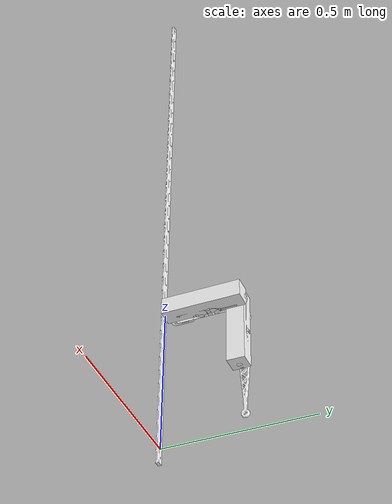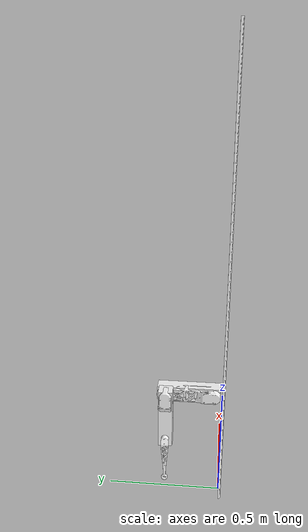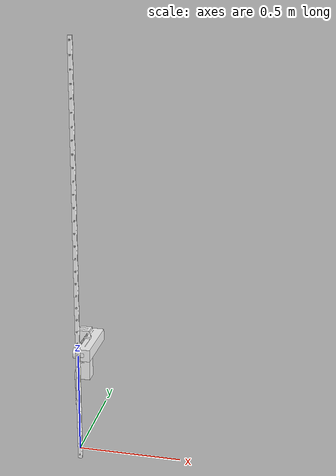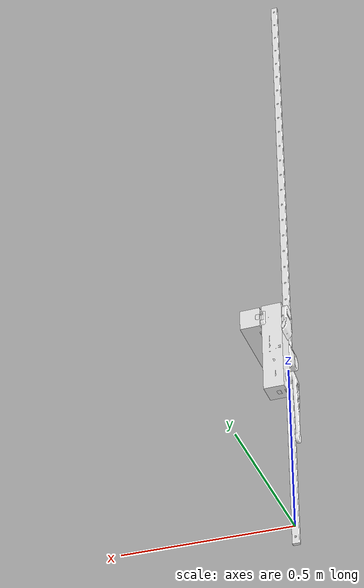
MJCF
<mujoco model="leg_constrained">
  <compiler angle="radian" meshdir="../meshes/"/>
  <asset>
    <mesh name="cart" file="cart.stl" scale="0.001 0.001 0.001"/>
    <mesh name="Module_left_hind" file="Module_left_hind.stl"/>
    <mesh name="Lower_leg_left" file="Lower_leg_left.stl"/>
  </asset>
  <worldbody>
    <body name="base_link">
      <inertial pos="0 0 0" mass="0.0001" diaginertia="1e-05 1e-05 1e-05"/>
      <geom quat="3.26795e-07 0 0 -1" type="mesh" contype="0" conaffinity="0" group="1" density="0" rgba="1 1 1 1" mesh="cart"/>
      <body name="LH_SHOULDER" pos="0.025 0.05 0.5" quat="2.31079e-07 -0.707107 0.707107 2.31079e-07">
        <inertial pos="-0.0724874 0.0315826 0.00248124" quat="0.546772 0.454856 0.541001 0.448848" mass="0.476697" diaginertia="0.00306152 0.00305004 0.000215348"/>
        <geom type="mesh" contype="0" conaffinity="0" group="1" density="0" rgba="1 1 1 1" mesh="Module_left_hind"/>
        <geom size="0.1345 0.0285 0.03" pos="-0.0945 0 0" type="box" rgba="1 1 1 1"/>
        <body name="LH_UPPER_LEG" pos="-0.19 0.044 0" quat="0.707107 0 0.707107 0">
          <inertial pos="-0.0724874 0.0315826 0.00248124" quat="0.546772 0.454856 0.541001 0.448848" mass="0.476697" diaginertia="0.00306152 0.00305004 0.000215348"/>
          <joint name="theta_hip" pos="0 0 0" axis="0 1 0" actuatorfrcrange="-6 6" range="-5. 5." armature="0.0" damping="0.05" frictionloss="0.001"/>
          <geom type="mesh" contype="0" conaffinity="0" group="1" density="0" rgba="1 1 1 1" mesh="Module_left_hind"/>
          <geom size="0.1345 0.0285 0.03" pos="-0.0945 0.015 0" type="box" rgba="1 1 1 1"/>
          <body name="LH_LINK_HIP" pos="0 0 0">
            <inertial pos="0 0 0" mass="0.001" diaginertia="1e-06 1e-06 1e-06"/>
            <joint name="q_hip" pos="0 0 0" axis="0 1 0" range="-3.14159 3.14159" armature="0.001" damping="0.05" stiffness="0.5" frictionloss="0.001"/>
            <body name="LH_LOWER_LEG" pos="-0.19 0.044 0">
              <inertial pos="-0.0660893 0.0198901 1.55259e-05" quat="0.487419 0.486067 0.513613 0.512215" mass="0.046942" diaginertia="0.000213 0.000211548 4.57013e-06"/>
              <joint name="theta_knee" pos="0 0 0" axis="0 1 0" actuatorfrcrange="-6 6" range="-5. 5." armature="0.0" damping="0.05" frictionloss="0.001"/>
              <geom quat="0.707107 0 0.707107 0" type="mesh" contype="0" conaffinity="0" group="1" density="0" rgba="1 1 1 1" mesh="Lower_leg_left"/>
              <geom name="LH_LOWER_LEG" quat="0.707107 0 0.707107 0" type="mesh" rgba="1 1 1 1" mesh="Lower_leg_left"/>
              <body name="LH_LINK_KNEE" pos="0 0 0">
                <inertial pos="0 0 0" mass="0.001" diaginertia="1e-06 1e-06 1e-06"/>
                <joint name="q_knee" pos="0 0 0" axis="0 1 0" range="-3.14159 3.14159" armature="0.001" damping="0.05" stiffness="0.5" frictionloss="0.001"/>
                <body name="LH_FOOT" pos="-0.19 0.028 0"/>
              </body>
            </body>
          </body>
        </body>
      </body>
    </body>
  </worldbody>
<actuator>
    <motor name="HIP" joint="theta_hip" ctrlrange="-5 5" gear="0.2"/>
    <motor name="KNEE" joint="theta_knee" ctrlrange="-5 5" gear="0.02"/>
  </actuator>

  <sensor>
    <jointpos name="theta_hip" joint="theta_hip"/>
    <jointpos name="theta_knee" joint="theta_knee"/>
    <jointvel name="dtheta_hip" joint="theta_hip"/>
    <jointvel name="dtheta_knee" joint="theta_knee"/>
    <jointpos name="q_hip" joint="q_hip"/>
    <jointpos name="q_knee" joint="q_knee"/>
    <jointvel name="dq_hip" joint="q_hip"/>
    <jointvel name="dq_knee" joint="q_knee"/>
  </sensor>

</mujoco>
